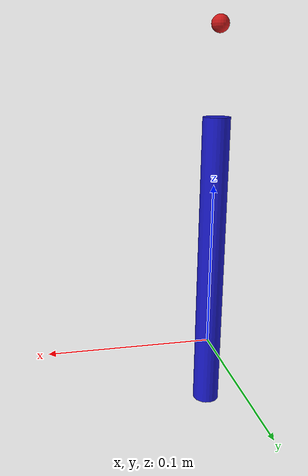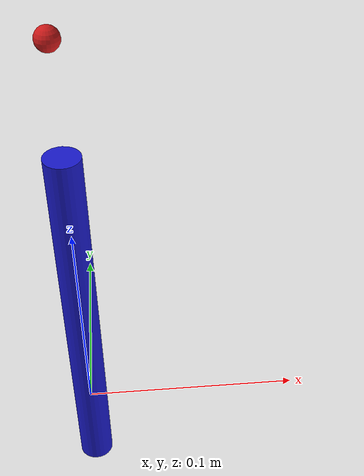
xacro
<?xml version="1.0"?>
<robot xmlns:xacro="http://www.ros.org/wiki/xacro" name="me557_pen">

  <xacro:macro name="me557_pen_macro" params="prefix:='me557_'">

    <!-- Inertial constants kept simple for now -->
    <link name="${prefix}base_link">
      <inertial>
        <origin xyz="0 0 0" rpy="0 0 0"/>
        <mass value="0.1"/>
        <inertia ixx="1e-3" ixy="0.0" ixz="0.0"
                 iyy="1e-3" iyz="0.0"
                 izz="1e-3"/>
      </inertial>
      <visual>
        <origin xyz="0 0 0.05" rpy="0 0 0"/>
        <geometry>
          <!-- Simple cylinder as a stand-in for the pen body -->
          <cylinder radius="0.008" length="0.18"/>
        </geometry>
        <material name="pen_body_color">
          <color rgba="0.1 0.1 0.8 1.0"/>
        </material>
      </visual>
      <collision>
        <origin xyz="0 0 0.05" rpy="0 0 0"/>
        <geometry>
          <cylinder radius="0.008" length="0.18"/>
        </geometry>
      </collision>
    </link>

    <!-- Optional tip link to illustrate multi-link structure -->
    <joint name="${prefix}base_to_tip" type="fixed">
      <origin xyz="0 0 0.18" rpy="0 0 0"/>
      <parent link="${prefix}base_link"/>
      <child link="${prefix}tip_link"/>
    </joint>

    <link name="${prefix}tip_link">
      <visual>
        <origin xyz="0 0 0.01" rpy="0 0 0"/>
        <geometry>
          <sphere radius="0.005"/>
        </geometry>
        <material name="pen_tip_color">
          <color rgba="0.8 0.1 0.1 1.0"/>
        </material>
      </visual>
      <collision>
        <origin xyz="0 0 0.01" rpy="0 0 0"/>
        <geometry>
          <sphere radius="0.005"/>
        </geometry>
      </collision>
    </link>

  </xacro:macro>

  <!-- Instantiate the macro -->
  <xacro:me557_pen_macro/>

</robot>
